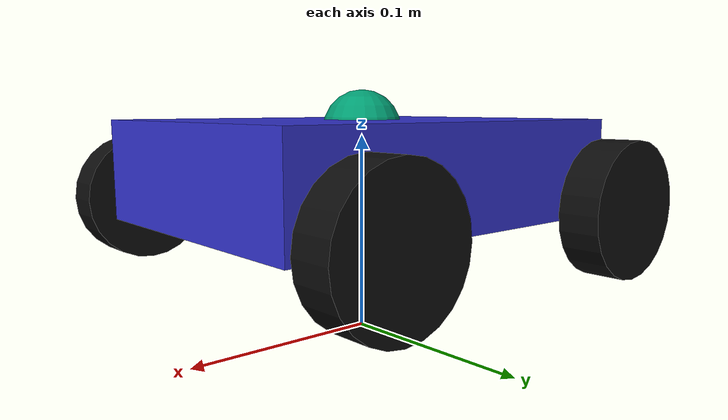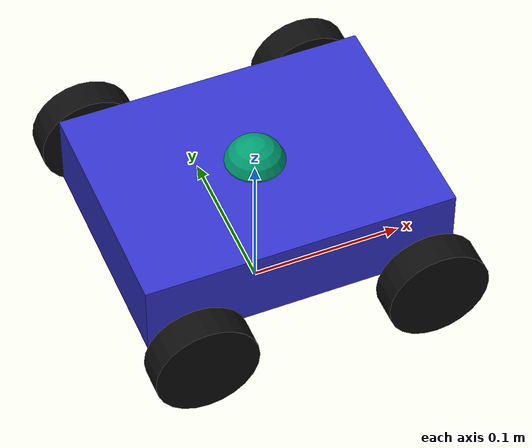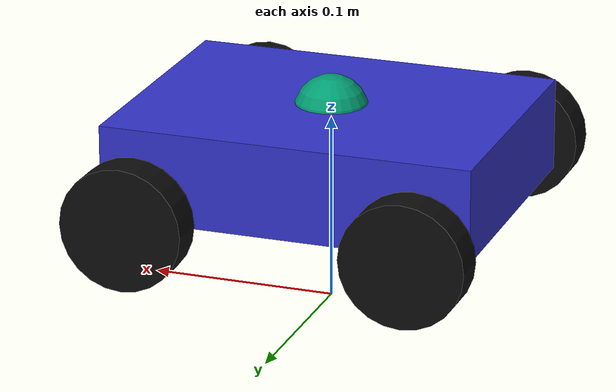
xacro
<?xml version="1.0"?>
<robot xmlns:xacro="http://www.ros.org/wiki/xacro">

  <!-- Robot Constants -->
  <xacro:property name="PI" value="3.14159" />
  <xacro:property name="base_w" value="0.2" />
  <xacro:property name="base_l" value="0.15" />
  <xacro:property name="base_h" value="0.05" />
  <xacro:property name="wheel_r" value="0.033" />
  <xacro:property name="wheel_len" value="0.02" />
  <xacro:property name="z_offset" value="${wheel_r}" />

  <!-- Materials -->
  <material name="CarBody">
    <color rgba="0.2 0.2 0.8 1.0"/> <!-- Metallic Blue -->
  </material>

  <material name="WheelMaterial">
    <color rgba="0.05 0.05 0.05 1.0"/> <!-- Dark Rubber -->
  </material>

  <!-- Base Footprint -->
  <link name="base_footprint"/>
  <joint name="base_footprint_joint" type="fixed">
    <parent link="base_footprint"/>
    <child link="base_link"/>
    <origin xyz="0 0 ${wheel_r}" rpy="0 0 0"/>
  </joint>

  <!-- Base Link -->
  <link name="base_link">
    <visual>
      <origin xyz="0 0 ${base_h}" rpy="0 0 0"/>
      <geometry>
        <box size="${base_w} ${base_l} ${base_h}"/>
      </geometry>
      <material name="CarBody"/>
    </visual>
    <collision>
      <origin xyz="0 0 ${base_h * 0.5}" rpy="0 0 0"/>
      <geometry>
        <box size="${base_w} ${base_l} ${base_h}"/>
      </geometry>
    </collision>
    <inertial>
      <mass value="0.3"/>
      <origin xyz="0 0 ${base_h * 0.5}" rpy="0 0 0"/>
      <inertia ixx="0.01" ixy="0" ixz="0" iyy="0.01" iyz="0" izz="0.01"/>
    </inertial>
  </link>

    <!-- Lidar -->
    <link name="lidar">
      <visual>
        <origin xyz="0 0 0" rpy="0 0 0"/>
        <geometry>
          <sphere radius="0.02"/>
        </geometry>
        <material name="LidarGlass"/>
      </visual>
      <collision>
        <origin xyz="0 0 0" rpy="0 0 0"/>
        <geometry>
          <sphere radius="0.02"/>
        </geometry>
      </collision>
      <inertial>
        <mass value="0.1"/>
        <origin xyz="0 0 0" rpy="0 0 0"/>
        <inertia ixx="0.000005" ixy="0" ixz="0" iyy="0.000005" iyz="0" izz="0.000005"/>
      </inertial>
    </link>

    <joint name="lidar_joint" type="fixed">
      <parent link="base_link"/>
      <child link="lidar"/>
      <origin xyz="0 0 ${base_h + 0.02}" rpy="0 0 0"/>
    </joint>

  <!-- Left Front Wheel -->
  <link name="left_front_wheel">
    <visual>
      <origin xyz="0 0 0" rpy="${PI * 0.5} 0 0"/>
      <geometry>
        <cylinder length="${wheel_len}" radius="${wheel_r}"/>
      </geometry>
      <material name="WheelMaterial"/>
    </visual>
    <collision>
      <origin xyz="0 0 0" rpy="${PI * 0.5} 0 0"/>
      <geometry>
        <cylinder length="${wheel_len}" radius="${wheel_r}"/>
      </geometry>
    </collision>
    <inertial>
      <mass value="0.3"/>
      <origin xyz="0 0 0" rpy="0 0 0"/>
      <inertia ixx="0.0001" ixy="0" ixz="0" iyy="0.0001" iyz="0" izz="0.0001"/>
    </inertial>
  </link>

  <joint name="left_front_wheel_joint" type="continuous">
    <parent link="base_link"/>
    <child link="left_front_wheel"/>
    <origin xyz="${base_l * 0.5} ${base_w * 0.5} ${z_offset}" rpy="0 0 0"/>
    <axis xyz="0 1 0"/>
  </joint>

  <!-- Left Rear Wheel -->
  <link name="left_rear_wheel">
    <visual>
      <origin xyz="0 0 0" rpy="${PI * 0.5} 0 0"/>
      <geometry>
        <cylinder length="${wheel_len}" radius="${wheel_r}"/>
      </geometry>
      <material name="WheelMaterial"/>
    </visual>
    <collision>
      <origin xyz="0 0 0" rpy="${PI * 0.5} 0 0"/>
      <geometry>
        <cylinder length="${wheel_len}" radius="${wheel_r}"/>
      </geometry>
    </collision>
    <inertial>
      <mass value="0.3"/>
      <origin xyz="0 0 0" rpy="0 0 0"/>
      <inertia ixx="0.0001" ixy="0" ixz="0" iyy="0.0001" iyz="0" izz="0.0001"/>
    </inertial>
  </link>

  <joint name="left_rear_wheel_joint" type="continuous">
    <parent link="base_link"/>
    <child link="left_rear_wheel"/>
    <origin xyz="-${base_l * 0.5} ${base_w * 0.5} ${z_offset}" rpy="0 0 0"/>
    <axis xyz="0 1 0"/>
  </joint>

  <!-- Right Front Wheel -->
  <link name="right_front_wheel">
    <visual>
      <origin xyz="0 0 0" rpy="${PI * 0.5} 0 0"/>
      <geometry>
        <cylinder length="${wheel_len}" radius="${wheel_r}"/>
      </geometry>
      <material name="WheelMaterial"/>
    </visual>
    <collision>
      <origin xyz="0 0 0" rpy="${PI * 0.5} 0 0"/>
      <geometry>
        <cylinder length="${wheel_len}" radius="${wheel_r}"/>
      </geometry>
    </collision>
    <inertial>
      <mass value="0.3"/>
      <origin xyz="0 0 0" rpy="0 0 0"/>
      <inertia ixx="0.0001" ixy="0" ixz="0" iyy="0.0001" iyz="0" izz="0.0001"/>
    </inertial>
  </link>

  <joint name="right_front_wheel_joint" type="continuous">
    <parent link="base_link"/>
    <child link="right_front_wheel"/>
    <origin xyz="${base_l * 0.5} -${base_w * 0.5} ${z_offset}" rpy="0 0 0"/>
    <axis xyz="0 1 0"/>
  </joint>

  <!-- Right Rear Wheel -->
  <link name="right_rear_wheel">
    <visual>
      <origin xyz="0 0 0" rpy="${PI * 0.5} 0 0"/>
      <geometry>
        <cylinder length="${wheel_len}" radius="${wheel_r}"/>
      </geometry>
      <material name="WheelMaterial"/>
    </visual>
    <collision>
      <origin xyz="0 0 0" rpy="${PI * 0.5} 0 0"/>
      <geometry>
        <cylinder length="${wheel_len}" radius="${wheel_r}"/>
      </geometry>
    </collision>
    <inertial>
      <mass value="0.3"/>
      <origin xyz="0 0 0" rpy="0 0 0"/>
      <inertia ixx="0.0001" ixy="0" ixz="0" iyy="0.0001" iyz="0" izz="0.0001"/>
    </inertial>
  </link>

  <joint name="right_rear_wheel_joint" type="continuous">
    <parent link="base_link"/>
    <child link="right_rear_wheel"/>
    <origin xyz="-${base_l * 0.5} -${base_w * 0.5} ${z_offset}" rpy="0 0 0"/>
    <axis xyz="0 1 0"/>
  </joint>

</robot>
